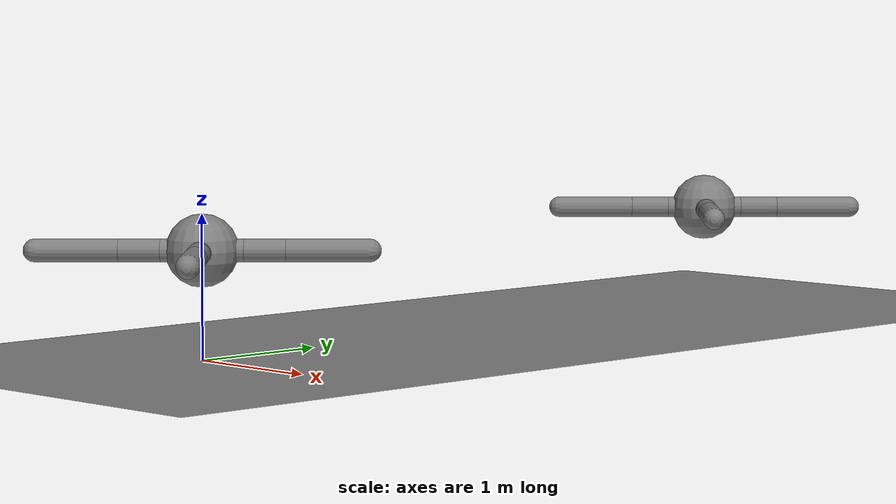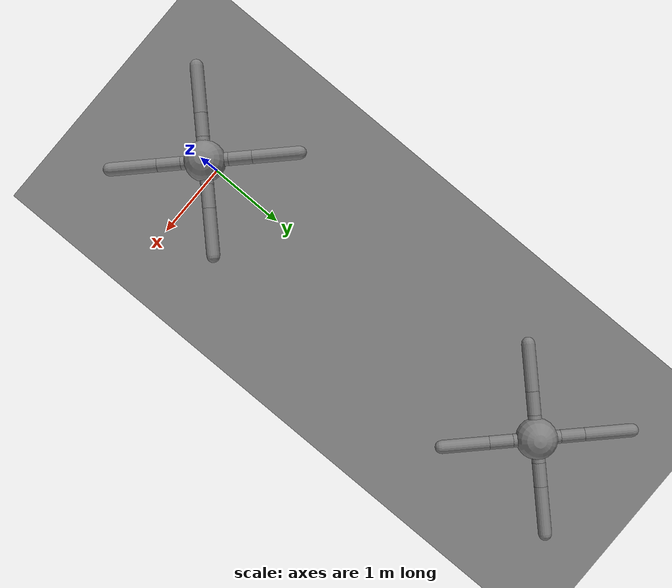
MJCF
<mujoco>
  <worldbody>
    <body pos="0 5.13 0.75" quat="-1 0 0 0" gravcomp="0" name="torso_0">
      <freejoint name="root_1" />
      <geom density="5" type="sphere" size="0.25" pos="0 0 0" quat="-1 0 0 0" priority="0" contype="1" conaffinity="0" group="0" condim="3" solmix="1" solref="0.02 1" solimp="0.9 0.95 0.001" margin="0.01" gap="0" friction="1 0.5 0.5" fluidshape="none" fluidcoef="5 0.25 1.5 1 1" name="torso_geom_2" />
      <body pos="0 0 0" quat="-1 0 0 0" gravcomp="0" name="front_left_leg_3">
        <geom density="5" type="capsule" size="0.08000002 0.141421" pos="0.1 0.0999999 0" quat="0.7071069 0.4999999 -0.4999999 0" priority="0" contype="1" conaffinity="0" group="0" condim="3" solmix="1" solref="0.02 1" solimp="0.9 0.95 0.001" margin="0.01" gap="0" friction="1 0.5 0.5" fluidshape="none" fluidcoef="5 0.25 1.5 1 1" name="aux_1_geom_7" />
        <body pos="0.2 0.1999998 0" quat="-1 0 0 0" gravcomp="0" name="aux_1_8">
          <joint type="hinge" pos="0 0 0" axis="-1.192093E-07 0 1" ref="0" armature="1" springref="0" springdamper="0 0" damping="1" stiffness="0" solreflimit="0.02 1" solimplimit="0.9 0.95 0.001 0.5 2" solreffriction="0.02 1" solimpfriction="0.9 0.95 0.001 0.5 2" frictionloss="0" limited="true" margin="0" range="-30.00002 30.00002" name="hip_1_15" />
          <geom density="5" type="capsule" size="0.08000002 0.141421" pos="0.1 0.1000004 0" quat="0.7071069 0.4999999 -0.4999999 0" priority="0" contype="1" conaffinity="0" group="0" condim="3" solmix="1" solref="0.02 1" solimp="0.9 0.95 0.001" margin="0.01" gap="0" friction="1 0.5 0.5" fluidshape="none" fluidcoef="5 0.25 1.5 1 1" name="left_leg_geom_16" />
          <body pos="0.2 0.2000003 0" quat="-1 0 0 0" gravcomp="0" name="body_0_17">
            <joint type="hinge" pos="0 0 0" axis="-0.7071069 0.7071068 0" ref="0" armature="1" springref="0" springdamper="0 0" damping="1" stiffness="0" solreflimit="0.02 1" solimplimit="0.9 0.95 0.001 0.5 2" solreffriction="0.02 1" solimpfriction="0.9 0.95 0.001 0.5 2" frictionloss="0" limited="true" margin="0" range="30.00002 69.99997" name="ankle_1_27" />
            <geom density="5" type="capsule" size="0.08000002 0.2828431" pos="0.2 0.1999998 0" quat="0.7071069 0.4999999 -0.4999999 0" priority="0" contype="1" conaffinity="0" group="0" condim="3" solmix="1" solref="0.02 1" solimp="0.9 0.95 0.001" margin="0.01" gap="0" friction="1 0.5 0.5" fluidshape="none" fluidcoef="5 0.25 1.5 1 1" name="left_ankle_geom_28" />
          </body>
        </body>
      </body>
      <body pos="0 0 0" quat="-1 0 0 0" gravcomp="0" name="front_right_leg_4">
        <geom density="5" type="capsule" size="0.08000002 0.141421" pos="-0.1 0.0999999 0" quat="0.7071069 0.4999999 0.4999999 0" priority="0" contype="1" conaffinity="0" group="0" condim="3" solmix="1" solref="0.02 1" solimp="0.9 0.95 0.001" margin="0.01" gap="0" friction="1 0.5 0.5" fluidshape="none" fluidcoef="5 0.25 1.5 1 1" name="aux_2_geom_9" />
        <body pos="-0.2 0.1999998 0" quat="-1 0 0 0" gravcomp="0" name="aux_2_10">
          <joint type="hinge" pos="0 0 0" axis="-1.192093E-07 0 1" ref="0" armature="1" springref="0" springdamper="0 0" damping="1" stiffness="0" solreflimit="0.02 1" solimplimit="0.9 0.95 0.001 0.5 2" solreffriction="0.02 1" solimpfriction="0.9 0.95 0.001 0.5 2" frictionloss="0" limited="true" margin="0" range="-30.00002 30.00002" name="hip_2_18" />
          <geom density="5" type="capsule" size="0.08000002 0.141421" pos="-0.1 0.1000004 0" quat="0.7071069 0.4999999 0.4999999 0" priority="0" contype="1" conaffinity="0" group="0" condim="3" solmix="1" solref="0.02 1" solimp="0.9 0.95 0.001" margin="0.01" gap="0" friction="1 0.5 0.5" fluidshape="none" fluidcoef="5 0.25 1.5 1 1" name="right_leg_geom_19" />
          <body pos="-0.2 0.2000003 0" quat="-1 0 0 0" gravcomp="0" name="body_1_20">
            <joint type="hinge" pos="0 0 0" axis="0.7071067 0.7071068 0" ref="0" armature="1" springref="0" springdamper="0 0" damping="1" stiffness="0" solreflimit="0.02 1" solimplimit="0.9 0.95 0.001 0.5 2" solreffriction="0.02 1" solimpfriction="0.9 0.95 0.001 0.5 2" frictionloss="0" limited="true" margin="0" range="-69.99997 -30.00002" name="ankle_2_29" />
            <geom density="5" type="capsule" size="0.08000002 0.2828431" pos="-0.2 0.1999998 0" quat="0.7071069 0.4999999 0.4999999 0" priority="0" contype="1" conaffinity="0" group="0" condim="3" solmix="1" solref="0.02 1" solimp="0.9 0.95 0.001" margin="0.01" gap="0" friction="1 0.5 0.5" fluidshape="none" fluidcoef="5 0.25 1.5 1 1" name="right_ankle_geom_30" />
          </body>
        </body>
      </body>
      <body pos="0 0 0" quat="-1 0 0 0" gravcomp="0" name="back_leg_5">
        <geom density="5" type="capsule" size="0.08000002 0.141421" pos="-0.1 -0.0999999 0" quat="0.7071069 -0.4999999 0.4999999 0" priority="0" contype="1" conaffinity="0" group="0" condim="3" solmix="1" solref="0.02 1" solimp="0.9 0.95 0.001" margin="0.01" gap="0" friction="1 0.5 0.5" fluidshape="none" fluidcoef="5 0.25 1.5 1 1" name="aux_3_geom_11" />
        <body pos="-0.2 -0.1999998 0" quat="-1 0 0 0" gravcomp="0" name="aux_3_12">
          <joint type="hinge" pos="0 0 0" axis="-1.192093E-07 0 1" ref="0" armature="1" springref="0" springdamper="0 0" damping="1" stiffness="0" solreflimit="0.02 1" solimplimit="0.9 0.95 0.001 0.5 2" solreffriction="0.02 1" solimpfriction="0.9 0.95 0.001 0.5 2" frictionloss="0" limited="true" margin="0" range="-30.00002 30.00002" name="hip_3_21" />
          <geom density="5" type="capsule" size="0.08000002 0.141421" pos="-0.1 -0.1000004 0" quat="0.7071069 -0.4999999 0.4999999 0" priority="0" contype="1" conaffinity="0" group="0" condim="3" solmix="1" solref="0.02 1" solimp="0.9 0.95 0.001" margin="0.01" gap="0" friction="1 0.5 0.5" fluidshape="none" fluidcoef="5 0.25 1.5 1 1" name="back_leg_geom_22" />
          <body pos="-0.2 -0.2000003 0" quat="-1 0 0 0" gravcomp="0" name="body_2_23">
            <joint type="hinge" pos="0 0 0" axis="-0.7071069 0.7071068 0" ref="0" armature="1" springref="0" springdamper="0 0" damping="1" stiffness="0" solreflimit="0.02 1" solimplimit="0.9 0.95 0.001 0.5 2" solreffriction="0.02 1" solimpfriction="0.9 0.95 0.001 0.5 2" frictionloss="0" limited="true" margin="0" range="-69.99997 -30.00002" name="ankle_3_31" />
            <geom density="5" type="capsule" size="0.08000002 0.2828431" pos="-0.2 -0.1999998 0" quat="0.7071069 -0.4999999 0.4999999 0" priority="0" contype="1" conaffinity="0" group="0" condim="3" solmix="1" solref="0.02 1" solimp="0.9 0.95 0.001" margin="0.01" gap="0" friction="1 0.5 0.5" fluidshape="none" fluidcoef="5 0.25 1.5 1 1" name="third_ankle_geom_32" />
          </body>
        </body>
      </body>
      <body pos="0 0 0" quat="-1 0 0 0" gravcomp="0" name="right_back_leg_6">
        <geom density="5" type="capsule" size="0.08000002 0.141421" pos="0.1 -0.0999999 0" quat="0.7071069 -0.4999999 -0.4999999 0" priority="0" contype="1" conaffinity="0" group="0" condim="3" solmix="1" solref="0.02 1" solimp="0.9 0.95 0.001" margin="0.01" gap="0" friction="1 0.5 0.5" fluidshape="none" fluidcoef="5 0.25 1.5 1 1" name="aux_4_geom_13" />
        <body pos="0.2 -0.1999998 0" quat="-1 0 0 0" gravcomp="0" name="aux_4_14">
          <joint type="hinge" pos="0 0 0" axis="-1.192093E-07 0 1" ref="0" armature="1" springref="0" springdamper="0 0" damping="1" stiffness="0" solreflimit="0.02 1" solimplimit="0.9 0.95 0.001 0.5 2" solreffriction="0.02 1" solimpfriction="0.9 0.95 0.001 0.5 2" frictionloss="0" limited="true" margin="0" range="-30.00002 30.00002" name="hip_4_24" />
          <geom density="5" type="capsule" size="0.08000002 0.141421" pos="0.1 -0.1000004 0" quat="0.7071069 -0.4999999 -0.4999999 0" priority="0" contype="1" conaffinity="0" group="0" condim="3" solmix="1" solref="0.02 1" solimp="0.9 0.95 0.001" margin="0.01" gap="0" friction="1 0.5 0.5" fluidshape="none" fluidcoef="5 0.25 1.5 1 1" name="rightback_leg_geom_25" />
          <body pos="0.2 -0.2000003 0" quat="-1 0 0 0" gravcomp="0" name="body_3_26">
            <joint type="hinge" pos="0 0 0" axis="0.7071067 0.7071068 0" ref="0" armature="1" springref="0" springdamper="0 0" damping="1" stiffness="0" solreflimit="0.02 1" solimplimit="0.9 0.95 0.001 0.5 2" solreffriction="0.02 1" solimpfriction="0.9 0.95 0.001 0.5 2" frictionloss="0" limited="true" margin="0" range="30.00002 69.99997" name="ankle_4_33" />
            <geom density="5" type="capsule" size="0.08000002 0.2828431" pos="0.2 -0.1999998 0" quat="0.7071069 -0.4999999 -0.4999999 0" priority="0" contype="1" conaffinity="0" group="0" condim="3" solmix="1" solref="0.02 1" solimp="0.9 0.95 0.001" margin="0.01" gap="0" friction="1 0.5 0.5" fluidshape="none" fluidcoef="5 0.25 1.5 1 1" name="fourth_ankle_geom_34" />
          </body>
        </body>
      </body>
    </body>
    <body pos="0 0 0.75" quat="-1 0 0 0" gravcomp="0" name="torso_35">
      <freejoint name="root_36" />
      <geom density="5" type="sphere" size="0.25" pos="0 0 0" quat="-1 0 0 0" priority="0" contype="1" conaffinity="0" group="0" condim="3" solmix="1" solref="0.02 1" solimp="0.9 0.95 0.001" margin="0.01" gap="0" friction="1 0.5 0.5" fluidshape="none" fluidcoef="5 0.25 1.5 1 1" name="torso_geom_37" />
      <body pos="0 0 0" quat="-1 0 0 0" gravcomp="0" name="front_left_leg_38">
        <geom density="5" type="capsule" size="0.08000002 0.141421" pos="0.1 0.1 0" quat="0.7071069 0.4999999 -0.4999999 0" priority="0" contype="1" conaffinity="0" group="0" condim="3" solmix="1" solref="0.02 1" solimp="0.9 0.95 0.001" margin="0.01" gap="0" friction="1 0.5 0.5" fluidshape="none" fluidcoef="5 0.25 1.5 1 1" name="aux_1_geom_42" />
        <body pos="0.2 0.2 0" quat="-1 0 0 0" gravcomp="0" name="aux_1_43">
          <joint type="hinge" pos="0 0 0" axis="-1.192093E-07 0 1" ref="0" armature="1" springref="0" springdamper="0 0" damping="1" stiffness="0" solreflimit="0.02 1" solimplimit="0.9 0.95 0.001 0.5 2" solreffriction="0.02 1" solimpfriction="0.9 0.95 0.001 0.5 2" frictionloss="0" limited="true" margin="0" range="-30.00002 30.00002" name="hip_1_50" />
          <geom density="5" type="capsule" size="0.08000002 0.141421" pos="0.1 0.1 0" quat="0.7071069 0.4999999 -0.4999999 0" priority="0" contype="1" conaffinity="0" group="0" condim="3" solmix="1" solref="0.02 1" solimp="0.9 0.95 0.001" margin="0.01" gap="0" friction="1 0.5 0.5" fluidshape="none" fluidcoef="5 0.25 1.5 1 1" name="left_leg_geom_51" />
          <body pos="0.2 0.2 0" quat="-1 0 0 0" gravcomp="0" name="body_0_52">
            <joint type="hinge" pos="0 0 0" axis="-0.7071069 0.7071068 0" ref="0" armature="1" springref="0" springdamper="0 0" damping="1" stiffness="0" solreflimit="0.02 1" solimplimit="0.9 0.95 0.001 0.5 2" solreffriction="0.02 1" solimpfriction="0.9 0.95 0.001 0.5 2" frictionloss="0" limited="true" margin="0" range="30.00002 69.99997" name="ankle_1_62" />
            <geom density="5" type="capsule" size="0.08000002 0.2828431" pos="0.2 0.2 0" quat="0.7071069 0.4999999 -0.4999999 0" priority="0" contype="1" conaffinity="0" group="0" condim="3" solmix="1" solref="0.02 1" solimp="0.9 0.95 0.001" margin="0.01" gap="0" friction="1 0.5 0.5" fluidshape="none" fluidcoef="5 0.25 1.5 1 1" name="left_ankle_geom_63" />
          </body>
        </body>
      </body>
      <body pos="0 0 0" quat="-1 0 0 0" gravcomp="0" name="front_right_leg_39">
        <geom density="5" type="capsule" size="0.08000002 0.141421" pos="-0.1 0.1 0" quat="0.7071069 0.4999999 0.4999999 0" priority="0" contype="1" conaffinity="0" group="0" condim="3" solmix="1" solref="0.02 1" solimp="0.9 0.95 0.001" margin="0.01" gap="0" friction="1 0.5 0.5" fluidshape="none" fluidcoef="5 0.25 1.5 1 1" name="aux_2_geom_44" />
        <body pos="-0.2 0.2 0" quat="-1 0 0 0" gravcomp="0" name="aux_2_45">
          <joint type="hinge" pos="0 0 0" axis="-1.192093E-07 0 1" ref="0" armature="1" springref="0" springdamper="0 0" damping="1" stiffness="0" solreflimit="0.02 1" solimplimit="0.9 0.95 0.001 0.5 2" solreffriction="0.02 1" solimpfriction="0.9 0.95 0.001 0.5 2" frictionloss="0" limited="true" margin="0" range="-30.00002 30.00002" name="hip_2_53" />
          <geom density="5" type="capsule" size="0.08000002 0.141421" pos="-0.1 0.1 0" quat="0.7071069 0.4999999 0.4999999 0" priority="0" contype="1" conaffinity="0" group="0" condim="3" solmix="1" solref="0.02 1" solimp="0.9 0.95 0.001" margin="0.01" gap="0" friction="1 0.5 0.5" fluidshape="none" fluidcoef="5 0.25 1.5 1 1" name="right_leg_geom_54" />
          <body pos="-0.2 0.2 0" quat="-1 0 0 0" gravcomp="0" name="body_1_55">
            <joint type="hinge" pos="0 0 0" axis="0.7071067 0.7071068 0" ref="0" armature="1" springref="0" springdamper="0 0" damping="1" stiffness="0" solreflimit="0.02 1" solimplimit="0.9 0.95 0.001 0.5 2" solreffriction="0.02 1" solimpfriction="0.9 0.95 0.001 0.5 2" frictionloss="0" limited="true" margin="0" range="-69.99997 -30.00002" name="ankle_2_64" />
            <geom density="5" type="capsule" size="0.08000002 0.2828431" pos="-0.2 0.2 0" quat="0.7071069 0.4999999 0.4999999 0" priority="0" contype="1" conaffinity="0" group="0" condim="3" solmix="1" solref="0.02 1" solimp="0.9 0.95 0.001" margin="0.01" gap="0" friction="1 0.5 0.5" fluidshape="none" fluidcoef="5 0.25 1.5 1 1" name="right_ankle_geom_65" />
          </body>
        </body>
      </body>
      <body pos="0 0 0" quat="-1 0 0 0" gravcomp="0" name="back_leg_40">
        <geom density="5" type="capsule" size="0.08000002 0.141421" pos="-0.1 -0.1 0" quat="0.7071069 -0.4999999 0.4999999 0" priority="0" contype="1" conaffinity="0" group="0" condim="3" solmix="1" solref="0.02 1" solimp="0.9 0.95 0.001" margin="0.01" gap="0" friction="1 0.5 0.5" fluidshape="none" fluidcoef="5 0.25 1.5 1 1" name="aux_3_geom_46" />
        <body pos="-0.2 -0.2 0" quat="-1 0 0 0" gravcomp="0" name="aux_3_47">
          <joint type="hinge" pos="0 0 0" axis="-1.192093E-07 0 1" ref="0" armature="1" springref="0" springdamper="0 0" damping="1" stiffness="0" solreflimit="0.02 1" solimplimit="0.9 0.95 0.001 0.5 2" solreffriction="0.02 1" solimpfriction="0.9 0.95 0.001 0.5 2" frictionloss="0" limited="true" margin="0" range="-30.00002 30.00002" name="hip_3_56" />
          <geom density="5" type="capsule" size="0.08000002 0.141421" pos="-0.1 -0.1 0" quat="0.7071069 -0.4999999 0.4999999 0" priority="0" contype="1" conaffinity="0" group="0" condim="3" solmix="1" solref="0.02 1" solimp="0.9 0.95 0.001" margin="0.01" gap="0" friction="1 0.5 0.5" fluidshape="none" fluidcoef="5 0.25 1.5 1 1" name="back_leg_geom_57" />
          <body pos="-0.2 -0.2 0" quat="-1 0 0 0" gravcomp="0" name="body_2_58">
            <joint type="hinge" pos="0 0 0" axis="-0.7071069 0.7071068 0" ref="0" armature="1" springref="0" springdamper="0 0" damping="1" stiffness="0" solreflimit="0.02 1" solimplimit="0.9 0.95 0.001 0.5 2" solreffriction="0.02 1" solimpfriction="0.9 0.95 0.001 0.5 2" frictionloss="0" limited="true" margin="0" range="-69.99997 -30.00002" name="ankle_3_66" />
            <geom density="5" type="capsule" size="0.08000002 0.2828431" pos="-0.2 -0.2 0" quat="0.7071069 -0.4999999 0.4999999 0" priority="0" contype="1" conaffinity="0" group="0" condim="3" solmix="1" solref="0.02 1" solimp="0.9 0.95 0.001" margin="0.01" gap="0" friction="1 0.5 0.5" fluidshape="none" fluidcoef="5 0.25 1.5 1 1" name="third_ankle_geom_67" />
          </body>
        </body>
      </body>
      <body pos="0 0 0" quat="-1 0 0 0" gravcomp="0" name="right_back_leg_41">
        <geom density="5" type="capsule" size="0.08000002 0.141421" pos="0.1 -0.1 0" quat="0.7071069 -0.4999999 -0.4999999 0" priority="0" contype="1" conaffinity="0" group="0" condim="3" solmix="1" solref="0.02 1" solimp="0.9 0.95 0.001" margin="0.01" gap="0" friction="1 0.5 0.5" fluidshape="none" fluidcoef="5 0.25 1.5 1 1" name="aux_4_geom_48" />
        <body pos="0.2 -0.2 0" quat="-1 0 0 0" gravcomp="0" name="aux_4_49">
          <joint type="hinge" pos="0 0 0" axis="-1.192093E-07 0 1" ref="0" armature="1" springref="0" springdamper="0 0" damping="1" stiffness="0" solreflimit="0.02 1" solimplimit="0.9 0.95 0.001 0.5 2" solreffriction="0.02 1" solimpfriction="0.9 0.95 0.001 0.5 2" frictionloss="0" limited="true" margin="0" range="-30.00002 30.00002" name="hip_4_59" />
          <geom density="5" type="capsule" size="0.08000002 0.141421" pos="0.1 -0.1 0" quat="0.7071069 -0.4999999 -0.4999999 0" priority="0" contype="1" conaffinity="0" group="0" condim="3" solmix="1" solref="0.02 1" solimp="0.9 0.95 0.001" margin="0.01" gap="0" friction="1 0.5 0.5" fluidshape="none" fluidcoef="5 0.25 1.5 1 1" name="rightback_leg_geom_60" />
          <body pos="0.2 -0.2 0" quat="-1 0 0 0" gravcomp="0" name="body_3_61">
            <joint type="hinge" pos="0 0 0" axis="0.7071067 0.7071068 0" ref="0" armature="1" springref="0" springdamper="0 0" damping="1" stiffness="0" solreflimit="0.02 1" solimplimit="0.9 0.95 0.001 0.5 2" solreffriction="0.02 1" solimpfriction="0.9 0.95 0.001 0.5 2" frictionloss="0" limited="true" margin="0" range="30.00002 69.99997" name="ankle_4_68" />
            <geom density="5" type="capsule" size="0.08000002 0.2828431" pos="0.2 -0.2 0" quat="0.7071069 -0.4999999 -0.4999999 0" priority="0" contype="1" conaffinity="0" group="0" condim="3" solmix="1" solref="0.02 1" solimp="0.9 0.95 0.001" margin="0.01" gap="0" friction="1 0.5 0.5" fluidshape="none" fluidcoef="5 0.25 1.5 1 1" name="fourth_ankle_geom_69" />
          </body>
        </body>
      </body>
    </body>
    <geom density="5" type="plane" size="40 40 1" pos="0 0 0" quat="-1 0 0 0" priority="0" contype="1" conaffinity="1" group="0" condim="3" solmix="1" solref="0.02 1" solimp="0.9 0.95 0.001" margin="0.01" gap="0" friction="1 0.5 0.5" fluidshape="none" fluidcoef="5 0.25 1.5 1 1" name="floor_70" />
  </worldbody>
  <contact />
  <tendon />
  <equality />
  <actuator>
    <general joint="hip_4_24" ctrllimited="false" forcelimited="false" ctrlrange="-1 1" forcerange="0 0" lengthrange="0 0" gear="150 0 0 0 0 0" dyntype="none" gaintype="fixed" biastype="none" dynprm="1 0 0" gainprm="1 0 0" biasprm="0 0 0" name="general_4_71" />
    <general joint="hip_4_59" ctrllimited="false" forcelimited="false" ctrlrange="-1 1" forcerange="0 0" lengthrange="0 0" gear="150 0 0 0 0 0" dyntype="none" gaintype="fixed" biastype="none" dynprm="1 0 0" gainprm="1 0 0" biasprm="0 0 0" name="general_4_72" />
    <general joint="ankle_4_33" ctrllimited="false" forcelimited="false" ctrlrange="-1 1" forcerange="0 0" lengthrange="0 0" gear="150 0 0 0 0 0" dyntype="none" gaintype="fixed" biastype="none" dynprm="1 0 0" gainprm="1 0 0" biasprm="0 0 0" name="general_5_73" />
    <general joint="ankle_4_68" ctrllimited="false" forcelimited="false" ctrlrange="-1 1" forcerange="0 0" lengthrange="0 0" gear="150 0 0 0 0 0" dyntype="none" gaintype="fixed" biastype="none" dynprm="1 0 0" gainprm="1 0 0" biasprm="0 0 0" name="general_5_74" />
    <general joint="hip_1_15" ctrllimited="false" forcelimited="false" ctrlrange="-1 1" forcerange="0 0" lengthrange="0 0" gear="150 0 0 0 0 0" dyntype="none" gaintype="fixed" biastype="none" dynprm="1 0 0" gainprm="1 0 0" biasprm="0 0 0" name="general_6_75" />
    <general joint="hip_1_50" ctrllimited="false" forcelimited="false" ctrlrange="-1 1" forcerange="0 0" lengthrange="0 0" gear="150 0 0 0 0 0" dyntype="none" gaintype="fixed" biastype="none" dynprm="1 0 0" gainprm="1 0 0" biasprm="0 0 0" name="general_6_76" />
    <general joint="ankle_1_27" ctrllimited="false" forcelimited="false" ctrlrange="-1 1" forcerange="0 0" lengthrange="0 0" gear="150 0 0 0 0 0" dyntype="none" gaintype="fixed" biastype="none" dynprm="1 0 0" gainprm="1 0 0" biasprm="0 0 0" name="general_7_77" />
    <general joint="ankle_1_62" ctrllimited="false" forcelimited="false" ctrlrange="-1 1" forcerange="0 0" lengthrange="0 0" gear="150 0 0 0 0 0" dyntype="none" gaintype="fixed" biastype="none" dynprm="1 0 0" gainprm="1 0 0" biasprm="0 0 0" name="general_7_78" />
    <general joint="hip_2_18" ctrllimited="false" forcelimited="false" ctrlrange="-1 1" forcerange="0 0" lengthrange="0 0" gear="150 0 0 0 0 0" dyntype="none" gaintype="fixed" biastype="none" dynprm="1 0 0" gainprm="1 0 0" biasprm="0 0 0" name="general_8_79" />
    <general joint="hip_2_53" ctrllimited="false" forcelimited="false" ctrlrange="-1 1" forcerange="0 0" lengthrange="0 0" gear="150 0 0 0 0 0" dyntype="none" gaintype="fixed" biastype="none" dynprm="1 0 0" gainprm="1 0 0" biasprm="0 0 0" name="general_8_80" />
    <general joint="ankle_2_29" ctrllimited="false" forcelimited="false" ctrlrange="-1 1" forcerange="0 0" lengthrange="0 0" gear="150 0 0 0 0 0" dyntype="none" gaintype="fixed" biastype="none" dynprm="1 0 0" gainprm="1 0 0" biasprm="0 0 0" name="general_9_81" />
    <general joint="ankle_2_64" ctrllimited="false" forcelimited="false" ctrlrange="-1 1" forcerange="0 0" lengthrange="0 0" gear="150 0 0 0 0 0" dyntype="none" gaintype="fixed" biastype="none" dynprm="1 0 0" gainprm="1 0 0" biasprm="0 0 0" name="general_9_82" />
    <general joint="hip_3_21" ctrllimited="false" forcelimited="false" ctrlrange="-1 1" forcerange="0 0" lengthrange="0 0" gear="150 0 0 0 0 0" dyntype="none" gaintype="fixed" biastype="none" dynprm="1 0 0" gainprm="1 0 0" biasprm="0 0 0" name="general_10_83" />
    <general joint="hip_3_56" ctrllimited="false" forcelimited="false" ctrlrange="-1 1" forcerange="0 0" lengthrange="0 0" gear="150 0 0 0 0 0" dyntype="none" gaintype="fixed" biastype="none" dynprm="1 0 0" gainprm="1 0 0" biasprm="0 0 0" name="general_10_84" />
    <general joint="ankle_3_31" ctrllimited="false" forcelimited="false" ctrlrange="-1 1" forcerange="0 0" lengthrange="0 0" gear="150 0 0 0 0 0" dyntype="none" gaintype="fixed" biastype="none" dynprm="1 0 0" gainprm="1 0 0" biasprm="0 0 0" name="general_11_85" />
    <general joint="ankle_3_66" ctrllimited="false" forcelimited="false" ctrlrange="-1 1" forcerange="0 0" lengthrange="0 0" gear="150 0 0 0 0 0" dyntype="none" gaintype="fixed" biastype="none" dynprm="1 0 0" gainprm="1 0 0" biasprm="0 0 0" name="general_11_86" />
  </actuator>
  <sensor />
  <compiler coordinate="local" />
  <option gravity="0 0 -9.81" timestep="0.02" />
  <option impratio="1" magnetic="0 0 0" wind="0 0 0" density="0" viscosity="0" o_margin="0" o_solref="0.02 1" o_solimp="0.9 0.95 0.001 0.5 2" integrator="RK4" cone="pyramidal" jacobian="auto" solver="Newton" iterations="100" tolerance="1E-08" noslip_iterations="0" noslip_tolerance="1E-06" mpr_iterations="50" mpr_tolerance="1E-06">
    <flag constraint="enable" equality="enable" frictionloss="enable" limit="enable" contact="enable" passive="enable" gravity="enable" clampctrl="enable" warmstart="enable" filterparent="enable" actuation="enable" refsafe="enable" override="disable" energy="disable" fwdinv="disable" sensornoise="disable" multiccd="disable" />
  </option>
  <size memory="-1" />
  <custom>
    <numeric name="init_qpos" data="0 0 0.55 1 0 0 0 0 1 0 -1 0 -1 0 1" />
  </custom>
  <asset />
</mujoco>
